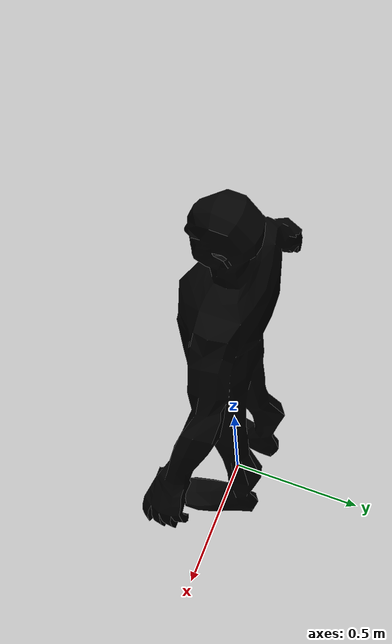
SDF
<?xml version='1.0'?>
<sdf version='1.6'>
  <model name='man_red'>
    <link name='link'>
      <self_collide>0</self_collide>
      <enable_wind>0</enable_wind>
      <kinematic>0</kinematic>
      <pose frame=''>-0 0 0 0 -0 0</pose>
      <gravity>1</gravity>
      <inertial>
        <mass>1</mass>
        <pose frame=''>0 0 0 0 -0 0</pose>
        <inertia>
          <ixx>1</ixx>
          <ixy>0</ixy>
          <ixz>0</ixz>
          <iyy>1</iyy>
          <iyz>0</iyz>
          <izz>1</izz>
        </inertia>
      </inertial>
      <visual name='visual'>
        <geometry>
          <mesh>
            <scale>1 1 1</scale>
            <uri>model://man/meshes/man.dae</uri>
          </mesh>
        </geometry>
        <pose frame=''>0 0 0 0 -0 0</pose>
        <transparency>0</transparency>
        <cast_shadows>1</cast_shadows>
        <material>
          <shader type='vertex'>
            <normal_map>__default__</normal_map>
          </shader>
          <script>
            <name>ModelPreview_1::link::visual_MATERIAL_</name>
          </script>
          <ambient>1 0 0 1</ambient>
          <diffuse>0 0 0 1</diffuse>
          <specular>0 0 0 1</specular>
          <emissive>0 0 0 1</emissive>
        </material>
      </visual>
      <collision name='collision'>
        <laser_retro>0</laser_retro>
        <max_contacts>10</max_contacts>
        <pose frame=''>0 0 0 0 -0 0</pose>
        <geometry>
          <mesh>
            <uri>model://man/meshes/man.dae</uri>
            <scale>1 1 1</scale>
          </mesh>
        </geometry>
        <surface>
          <friction>
            <ode>
              <mu>1</mu>
              <mu2>1</mu2>
              <fdir1>0 0 0</fdir1>
              <slip1>0</slip1>
              <slip2>0</slip2>
            </ode>
            <torsional>
              <coefficient>1</coefficient>
              <patch_radius>0</patch_radius>
              <surface_radius>0</surface_radius>
              <use_patch_radius>1</use_patch_radius>
              <ode>
                <slip>0</slip>
              </ode>
            </torsional>
          </friction>
          <bounce>
            <restitution_coefficient>0</restitution_coefficient>
            <threshold>1e+06</threshold>
          </bounce>
          <contact>
            <collide_without_contact>0</collide_without_contact>
            <collide_without_contact_bitmask>1</collide_without_contact_bitmask>
            <collide_bitmask>1</collide_bitmask>
            <ode>
              <soft_cfm>0</soft_cfm>
              <soft_erp>0.2</soft_erp>
              <kp>1e+13</kp>
              <kd>1</kd>
              <max_vel>0.01</max_vel>
              <min_depth>0</min_depth>
            </ode>
            <bullet>
              <split_impulse>1</split_impulse>
              <split_impulse_penetration_threshold>-0.01</split_impulse_penetration_threshold>
              <soft_cfm>0</soft_cfm>
              <soft_erp>0.2</soft_erp>
              <kp>1e+13</kp>
              <kd>1</kd>
            </bullet>
          </contact>
        </surface>
      </collision>
    </link>
    <static>1</static>
    <allow_auto_disable>1</allow_auto_disable>
  </model>
</sdf>
